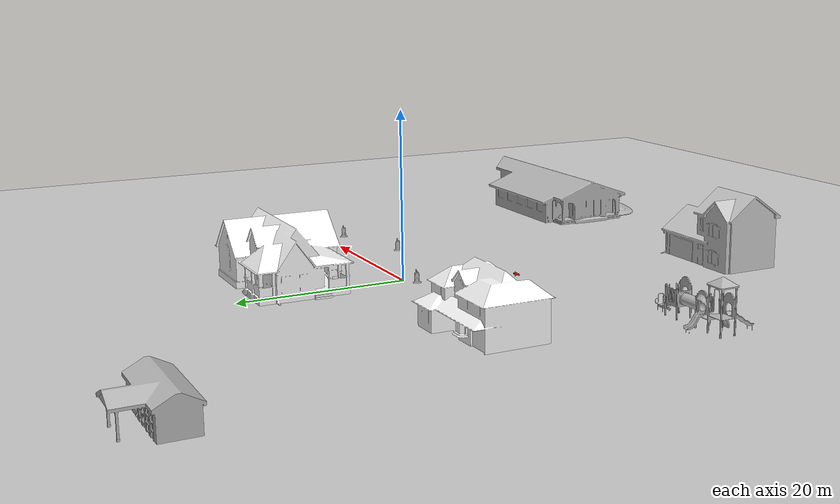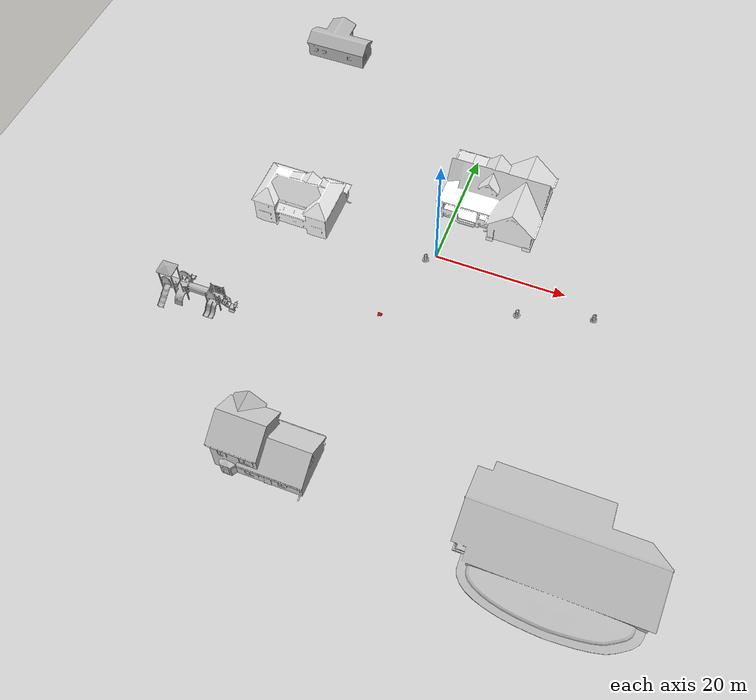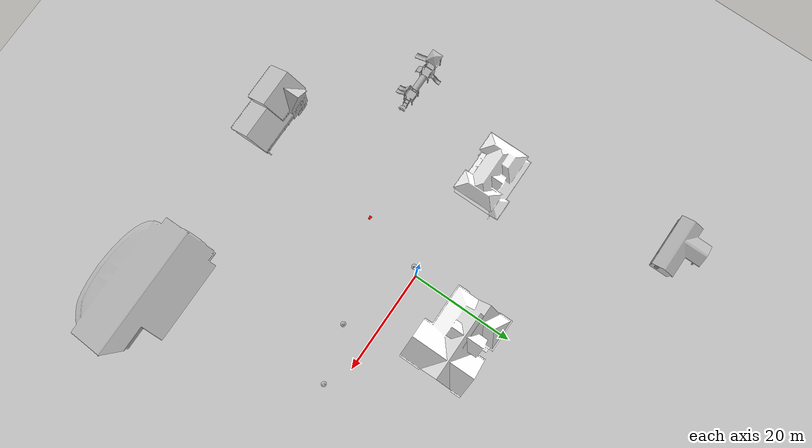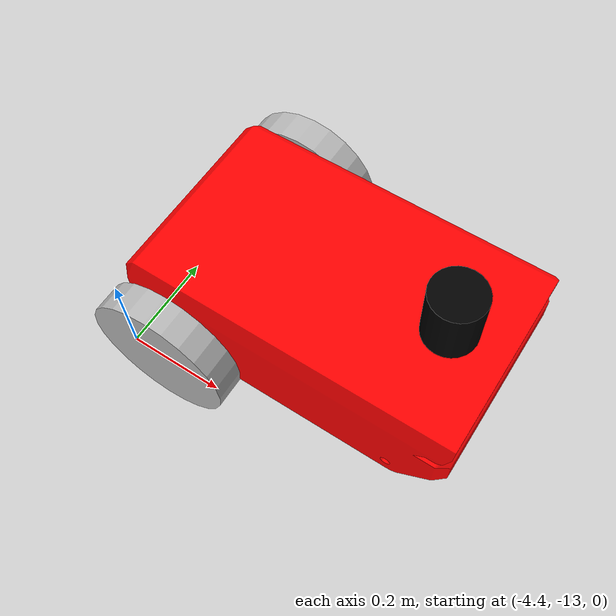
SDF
<sdf version="1.7">
 <world name="default">
  <light name="sun" type="directional">
   <pose>0 0 10 0 -0 0</pose>
   <diffuse>0.8 0.8 0.8 1</diffuse>
   <specular>0.2 0.2 0.2 1</specular>
   <attenuation>
    <range>1000</range>
    <constant>0.9</constant>
    <linear>0.01</linear>
    <quadratic>0.001</quadratic>
   </attenuation>
   <direction>-0.5 0.1 -0.9</direction>
   <spot><inner_angle>0</inner_angle><outer_angle>0</outer_angle><falloff>0</falloff></spot>
  </light>
  <model name="ground_plane">
   <static>1</static>
   <link name="link">
    <collision name="collision">
     <geometry><plane><normal>0 0 1</normal><size>100 100</size></plane></geometry>
     <surface>
      <contact><collide_bitmask>65535</collide_bitmask></contact>
      <friction><ode><mu>100</mu><mu2>50</mu2></ode></friction>
     </surface>
    </collision>
    <visual name="visual">
     <cast_shadows>0</cast_shadows>
     <geometry><plane><normal>0 0 1</normal><size>100 100</size></plane></geometry>
     <material>
      <script><uri>file://media/materials/scripts/gazebo.material</uri><name>Gazebo/Grey</name></script>
     </material>
    </visual>
   </link>
  </model>
  <gravity>0 0 -9.8</gravity>
  <magnetic_field>6e-06 2.3e-05 -4.2e-05</magnetic_field>
  <atmosphere type="adiabatic"/>
  <physics type="ode">
   <max_step_size>0.001</max_step_size>
   <real_time_factor>1</real_time_factor>
   <real_time_update_rate>1000</real_time_update_rate>
  </physics>
  <scene><ambient>0.4 0.4 0.4 1</ambient><background>0.7 0.7 0.7 1</background><shadows>1</shadows></scene>
  <audio><device>default</device></audio>
  <spherical_coordinates>
   <surface_model>EARTH_WGS84</surface_model>
   <latitude_deg>0</latitude_deg>
   <longitude_deg>0</longitude_deg>
   <elevation>0</elevation>
   <heading_deg>0</heading_deg>
  </spherical_coordinates>
  <model name="Construction Barrel">
   <link name="link">
    <inertial>
     <pose>0 0 0.4 0 -0 0</pose>
     <mass>500</mass>
     <inertia><ixx>51.2096</ixx><iyy>51.2096</iyy><izz>25</izz><ixy>0</ixy><ixz>0</ixz><iyz>0</iyz></inertia>
    </inertial>
    <collision name="collision">
     <geometry><mesh><uri>model://construction_barrel/meshes/construction_barrel.dae</uri></mesh></geometry>
    </collision>
    <visual name="visual">
     <geometry><mesh><uri>model://construction_barrel/meshes/construction_barrel.dae</uri></mesh></geometry>
    </visual>
   </link>
   <pose>-1.2742 -1.14102 1e-06 2e-06 3e-06 -2.6e-05</pose>
  </model>
  <model name="House 1">
   <static>1</static>
   <link name="link">
    <collision name="collision">
     <geometry><mesh><uri>model://house_1/meshes/house_1.dae</uri><scale>1.5 1.5 1.5</scale></mesh></geometry>
    </collision>
    <visual name="visual">
     <geometry><mesh><uri>model://house_1/meshes/house_1.dae</uri><scale>1.5 1.5 1.5</scale></mesh></geometry>
     <material>
      <script>
       <uri>model://house_1/materials/scripts</uri>
       <uri>model://house_1/materials/textures</uri>
       <name>House_1/Diffuse</name>
      </script>
      <shader type="normal_map_tangent_space"><normal_map>House_1_Normal.png</normal_map></shader>
     </material>
    </visual>
   </link>
   <pose>5.57726 12.4045 0 0 -0 0</pose>
  </model>
  <model name="House 2">
   <static>1</static>
   <link name="link">
    <collision name="collision">
     <geometry><mesh><uri>model://house_2/meshes/house_2.dae</uri><scale>1.5 1.5 1.5</scale></mesh></geometry>
    </collision>
    <visual name="visual">
     <geometry><mesh><uri>model://house_2/meshes/house_2.dae</uri><scale>1.5 1.5 1.5</scale></mesh></geometry>
     <material>
      <script>
       <uri>model://house_2/materials/scripts</uri>
       <uri>model://house_2/materials/textures</uri>
       <uri>model://house_1/materials/textures</uri>
       <name>House_2/Diffuse</name>
      </script>
      <shader type="normal_map_tangent_space">
       <normal_map>model://house_1/materials/textures/House_1_Normal.png</normal_map>
      </shader>
     </material>
    </visual>
   </link>
   <pose>-23.5271 0.804672 0 0 -0 0</pose>
  </model>
  <model name="House 3">
   <static>1</static>
   <link name="link">
    <collision name="collision">
     <geometry><mesh><uri>model://house_3/meshes/house_3.dae</uri><scale>1.5 1.5 1.5</scale></mesh></geometry>
    </collision>
    <visual name="visual">
     <geometry><mesh><uri>model://house_3/meshes/house_3.dae</uri><scale>1.5 1.5 1.5</scale></mesh></geometry>
     <material>
      <script>
       <uri>model://house_3/materials/scripts</uri>
       <uri>model://house_3/materials/textures</uri>
       <uri>model://house_1/materials/textures</uri>
       <name>House_3/Diffuse</name>
      </script>
      <shader type="normal_map_tangent_space">
       <normal_map>model://house_1/materials/textures/House_1_Normal.png</normal_map>
      </shader>
     </material>
    </visual>
   </link>
   <pose>-8.97381 -38.6481 0 0 -0 0</pose>
  </model>
  <model name="post_office">
   <static>1</static>
   <link name="link">
    <collision name="collision">
     <geometry><mesh><uri>model://post_office/meshes/post_office.dae</uri></mesh></geometry>
    </collision>
    <visual name="visual">
     <geometry><mesh><uri>model://post_office/meshes/post_office.dae</uri></mesh></geometry>
    </visual>
   </link>
   <pose>-30.6122 35.4213 0 0 -0 0</pose>
  </model>
  <model name="playground">
   <static>1</static>
   <link name="link">
    <collision name="collision">
     <geometry><mesh><uri>model://playground/meshes/playground.dae</uri></mesh></geometry>
    </collision>
    <visual name="visual">
     <geometry><mesh><uri>model://playground/meshes/playground.dae</uri></mesh></geometry>
    </visual>
   </link>
   <pose>-29.6134 -19.8435 0 0 -0 0</pose>
  </model>
  <model name="osrf_first_office">
   <static>1</static>
   <link name="link">
    <collision name="collision">
     <geometry><mesh><uri>model://osrf_first_office/meshes/osrf_first_office.dae</uri></mesh></geometry>
    </collision>
    <visual name="visual">
     <geometry><mesh><uri>model://osrf_first_office/meshes/osrf_first_office.dae</uri></mesh></geometry>
    </visual>
   </link>
   <pose>30.7006 -36.9928 0 0 -0 0</pose>
  </model>
  <model name="Construction Barrel_0">
   <link name="link">
    <inertial>
     <pose>0 0 0.4 0 -0 0</pose>
     <mass>500</mass>
     <inertia><ixx>51.2096</ixx><iyy>51.2096</iyy><izz>25</izz><ixy>0</ixy><ixz>0</ixz><iyz>0</iyz></inertia>
    </inertial>
    <collision name="collision">
     <geometry><mesh><uri>model://construction_barrel/meshes/construction_barrel.dae</uri></mesh></geometry>
    </collision>
    <visual name="visual">
     <geometry><mesh><uri>model://construction_barrel/meshes/construction_barrel.dae</uri></mesh></geometry>
    </visual>
   </link>
   <pose>14.4195 -5.76724 1e-06 3e-06 2e-06 -9e-06</pose>
  </model>
  <model name="Construction Barrel_1">
   <link name="link">
    <inertial>
     <pose>0 0 0.4 0 -0 0</pose>
     <mass>500</mass>
     <inertia><ixx>51.2096</ixx><iyy>51.2096</iyy><izz>25</izz><ixy>0</ixy><ixz>0</ixz><iyz>0</iyz></inertia>
    </inertial>
    <collision name="collision">
     <geometry><mesh><uri>model://construction_barrel/meshes/construction_barrel.dae</uri></mesh></geometry>
    </collision>
    <visual name="visual">
     <geometry><mesh><uri>model://construction_barrel/meshes/construction_barrel.dae</uri></mesh></geometry>
    </visual>
   </link>
   <pose>24.9944 -2.55692 -1e-06 2e-06 -1e-06 -7e-06</pose>
  </model>
  <model name="basic_mobile_bot">
   <static>0</static>
   <pose>-4.05404 -12.7933 0.189988 -3e-06 5.7e-05 0.001423</pose>
   <link name="base_footprint">
    <inertial>
     <inertia><ixx>1</ixx><ixy>0</ixy><ixz>0</ixz><iyy>1</iyy><iyz>0</iyz><izz>1</izz></inertia>
     <mass>1</mass>
    </inertial>
   </link>
   <link name="base_link">
    <collision name="base_collision">
     <pose>0 0 0.1 0 -0 0</pose>
     <geometry><box><size>0.7 0.39 0.2</size></box></geometry>
    </collision>
    <visual name="base_visual">
     <pose>0 0 -0.05 1.5708 -0 -3.14159</pose>
     <geometry>
      <mesh><uri>model://basic_mobile_bot_description/meshes/robot_base.stl</uri><scale>1 1 1</scale></mesh>
     </geometry>
     <material>
      <ambient>1 0 0 1</ambient>
      <diffuse>1 0 0 1</diffuse>
      <specular>0 0 0 1</specular>
      <emissive>0 0 0 1</emissive>
     </material>
    </visual>
    <inertial>
     <inertia><ixx>1</ixx><ixy>0</ixy><ixz>0</ixz><iyy>1</iyy><iyz>0</iyz><izz>1</izz></inertia>
     <mass>1</mass>
    </inertial>
   </link>
   <link name="imu_link">
    <sensor name="bmb_imu" type="imu">
     <always_on>1</always_on>
     <update_rate>100</update_rate>
     <visualize>1</visualize>
     <imu>
      <angular_velocity>
       <x><noise type="gaussian"><mean>0</mean><stddev>0.0002</stddev></noise></x>
       <y><noise type="gaussian"><mean>0</mean><stddev>0.0002</stddev></noise></y>
       <z><noise type="gaussian"><mean>0</mean><stddev>0.0002</stddev></noise></z>
      </angular_velocity>
      <linear_acceleration>
       <x><noise type="gaussian"><mean>0</mean><stddev>0.017</stddev></noise></x>
       <y><noise type="gaussian"><mean>0</mean><stddev>0.017</stddev></noise></y>
       <z><noise type="gaussian"><mean>0</mean><stddev>0.017</stddev></noise></z>
      </linear_acceleration>
      <orientation>
       <x><noise type="gaussian"><mean>0.0</mean><stddev>2e-3</stddev></noise></x>
       <y><noise type="gaussian"><mean>0.0</mean><stddev>2e-3</stddev></noise></y>
       <z><noise type="gaussian"><mean>0.0</mean><stddev>2e-3</stddev></noise></z>
      </orientation>
     </imu>
     <plugin name="basic_mobile_bot_imu" filename="libgazebo_ros_imu_sensor.so">
      <initial_orientation_as_reference>0</initial_orientation_as_reference>
      <frame_name>imu_link</frame_name>
      <ros><namespace>/imu</namespace><remapping>~/out:=data</remapping></ros>
     </plugin>
    </sensor>
    <inertial>
     <inertia><ixx>1</ixx><ixy>0</ixy><ixz>0</ixz><iyy>1</iyy><iyz>0</iyz><izz>1</izz></inertia>
     <mass>1</mass>
    </inertial>
   </link>
   <link name="gps_link">
    <sensor name="bmb_gps" type="gps">
     <always_on>1</always_on>
     <update_rate>10</update_rate>
     <gps>
      <position_sensing>
       <horizontal><noise type="gaussian"><mean>0</mean><stddev>0.01</stddev></noise></horizontal>
       <vertical><noise type="gaussian"><mean>0</mean><stddev>1</stddev></noise></vertical>
      </position_sensing>
     </gps>
     <plugin name="basic_mobile_bot_gps" filename="libgazebo_ros_gps_sensor.so">
      <ros><remapping>~/out:=gps/fix</remapping></ros>
     </plugin>
    </sensor>
    <inertial>
     <inertia><ixx>1</ixx><ixy>0</ixy><ixz>0</ixz><iyy>1</iyy><iyz>0</iyz><izz>1</izz></inertia>
     <mass>1</mass>
    </inertial>
   </link>
   <link name="lidar_link">
    <inertial>
     <pose>0.215 0 0.13 0 -0 0</pose>
     <inertia><ixx>0.001</ixx><ixy>0</ixy><ixz>0</ixz><iyy>0.001</iyy><iyz>0</iyz><izz>0.001</izz></inertia>
     <mass>0.114</mass>
    </inertial>
    <collision name="lidar_collision">
     <pose>0.215 0 0.13 0 -0 0</pose>
     <geometry><cylinder><radius>0.0508</radius><length>0.18</length></cylinder></geometry>
    </collision>
    <visual name="lidar_visual">
     <pose>0.215 0 0.13 0 -0 0</pose>
     <geometry><cylinder><radius>0.0508</radius><length>0.18</length></cylinder></geometry>
     <material>
      <ambient>0 0 0 1</ambient>
      <diffuse>0 0 0 1</diffuse>
      <specular>0 0 0 1</specular>
      <emissive>0 0 0 1</emissive>
     </material>
    </visual>
    <sensor name="lidar" type="ray">
     <pose>0.215 0 0.215 0 -0 0</pose>
     <always_on>1</always_on>
     <visualize>1</visualize>
     <update_rate>5</update_rate>
     <ray>
      <scan>
       <horizontal>
        <samples>360</samples>
        <resolution>1</resolution>
        <min_angle>0</min_angle>
        <max_angle>6.28</max_angle>
       </horizontal>
       <vertical><samples>1</samples><min_angle>0</min_angle><max_angle>0</max_angle></vertical>
      </scan>
      <range><min>0.12</min><max>3.5</max><resolution>0.015</resolution></range>
      <noise><type>gaussian</type><mean>0</mean><stddev>0.01</stddev></noise>
     </ray>
     <plugin name="scan" filename="libgazebo_ros_ray_sensor.so">
      <ros><remapping>~/out:=scan</remapping></ros>
      <output_type>sensor_msgs/LaserScan</output_type>
      <frame_name>lidar_link</frame_name>
     </plugin>
    </sensor>
   </link>
   <link name="drivewhl_l_link">
    <pose>-0.221 0.23 -0.05 3.14159 1.57079 -1.57079</pose>
    <collision name="drivewhl_l_collision">
     <geometry><cylinder><radius>0.14</radius><length>0.06</length></cylinder></geometry>
    </collision>
    <visual name="drivewhl_l_visual">
     <geometry><cylinder><radius>0.14</radius><length>0.06</length></cylinder></geometry>
    </visual>
    <inertial>
     <inertia><ixx>1</ixx><ixy>0</ixy><ixz>0</ixz><iyy>1</iyy><iyz>0</iyz><izz>1</izz></inertia>
     <mass>1</mass>
    </inertial>
   </link>
   <link name="drivewhl_r_link">
    <pose>-0.221 -0.23 -0.05 3.14159 1.57079 -1.57079</pose>
    <collision name="drivewhl_r_collision">
     <geometry><cylinder><radius>0.14</radius><length>0.06</length></cylinder></geometry>
    </collision>
    <visual name="drivewhl_r_visual">
     <geometry><cylinder><radius>0.14</radius><length>0.06</length></cylinder></geometry>
    </visual>
    <inertial>
     <inertia><ixx>1</ixx><ixy>0</ixy><ixz>0</ixz><iyy>1</iyy><iyz>0</iyz><izz>1</izz></inertia>
     <mass>1</mass>
    </inertial>
   </link>
   <link name="front_caster">
    <pose>0.217 0 -0.1 0 -0 0</pose>
    <inertial>
     <inertia><ixx>0.001</ixx><ixy>0</ixy><ixz>0</ixz><iyy>0.001</iyy><iyz>0</iyz><izz>0.001</izz></inertia>
     <mass>70</mass>
    </inertial>
    <collision name="collision">
     <geometry><sphere><radius>0.09</radius></sphere></geometry>
     <surface>
      <friction><ode><mu>0.01</mu><mu2>0.01</mu2><slip1>1</slip1><slip2>1</slip2></ode></friction>
     </surface>
    </collision>
    <visual name="front_caster_visual"><geometry><sphere><radius>0.09</radius></sphere></geometry></visual>
   </link>
   <joint name="base_joint" type="fixed"><parent>base_footprint</parent><child>base_link</child></joint>
   <joint name="drivewhl_l_joint" type="revolute">
    <parent>base_link</parent>
    <child>drivewhl_l_link</child>
    <axis>
     <xyz>0 0 1</xyz>
     <limit><lower>-1e+16</lower><upper>1e+16</upper></limit>
     <dynamics><spring_reference>0</spring_reference><spring_stiffness>0</spring_stiffness></dynamics>
    </axis>
   </joint>
   <joint name="drivewhl_r_joint" type="revolute">
    <parent>base_link</parent>
    <child>drivewhl_r_link</child>
    <axis>
     <xyz>0 0 1</xyz>
     <limit><lower>-1e+16</lower><upper>1e+16</upper></limit>
     <dynamics><spring_reference>0</spring_reference><spring_stiffness>0</spring_stiffness></dynamics>
    </axis>
   </joint>
   <joint name="caster_joint" type="fixed"><parent>base_link</parent><child>front_caster</child></joint>
   <joint name="imu_joint" type="fixed"><parent>base_link</parent><child>imu_link</child></joint>
   <joint name="gps_joint" type="fixed"><parent>base_link</parent><child>gps_link</child></joint>
   <joint name="lidar_joint" type="fixed"><parent>base_link</parent><child>lidar_link</child></joint>
   <plugin name="basic_mobile_bot_diff_drive" filename="libgazebo_ros_diff_drive.so">
    <update_rate>30</update_rate>
    <left_joint>drivewhl_l_joint</left_joint>
    <right_joint>drivewhl_r_joint</right_joint>
    <wheel_separation>0.52</wheel_separation>
    <wheel_diameter>0.28</wheel_diameter>
    <max_wheel_torque>20</max_wheel_torque>
    <max_wheel_acceleration>1.0</max_wheel_acceleration>
    <command_topic>cmd_vel</command_topic>
    <publish_odom>1</publish_odom>
    <publish_odom_tf>0</publish_odom_tf>
    <publish_wheel_tf>0</publish_wheel_tf>
    <odometry_topic>odom</odometry_topic>
    <odometry_frame>odom</odometry_frame>
    <robot_base_frame>base_footprint</robot_base_frame>
    <odometry_source>0</odometry_source>
    <ros><remapping>odom:=wheel/odometry</remapping></ros>
   </plugin>
   <plugin name="basic_mobile_bot_joint_state" filename="libgazebo_ros_joint_state_publisher.so">
    <ros><remapping>~/out:=joint_states</remapping></ros>
    <update_rate>30</update_rate>
    <joint_name>drivewhl_l_joint</joint_name>
    <joint_name>drivewhl_r_joint</joint_name>
   </plugin>
  </model>
 </world>
</sdf>
